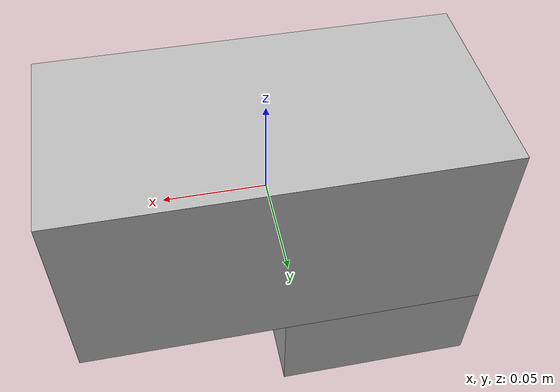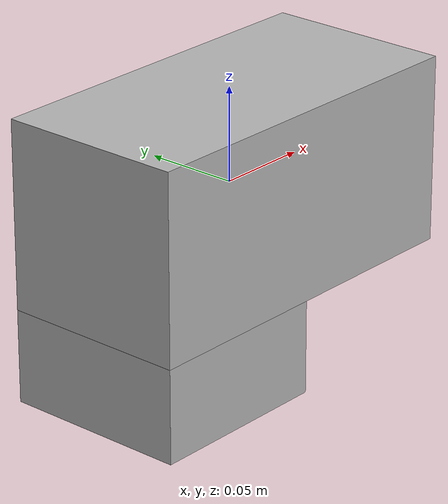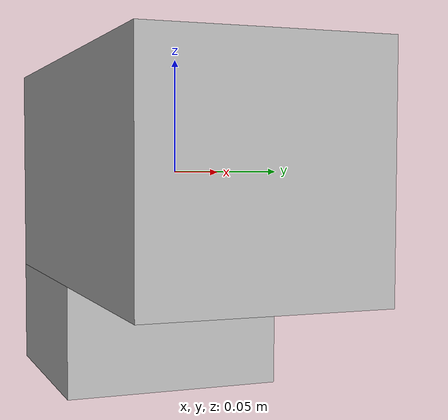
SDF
<?xml version="1.0" ?>
    <sdf version="1.5">
        <model name="camera">
            <pose>0 0 0 0 0 0</pose>

            <link name="Forward">
                <pose>0 0 0 0 0 0</pose>
                <inertial>
                    <mass>0.8</mass>
                    <inertia>
                        <ixx>0.9</ixx>
                        <iyy>0.9</iyy>
                        <izz>0.9</izz>
                    </inertia>
                </inertial>
                <collision name="collision">
                <geometry>
                    <box>
                    <size>0.1 0.1 0.1</size>
                    </box>
                </geometry>
                </collision>
                <visual name="visual">
                <geometry>
                    <box>
                    <size>0.2 0.1 0.1</size>
                    </box>
                </geometry>
                </visual>

                <sensor name="camera_forward" type="camera">
                <pose>0 0 0 0 0 0</pose>
                <topic>camera_forward</topic>
                <camera>
                    <box_type>full_2d</box_type>
                    <horizontal_fov>1.047</horizontal_fov>
                    <image>
                    <width>800</width>
                    <height>600</height>
                    </image>
                    <clip>
                    <near>0.1</near>
                    <far>10</far>
                    </clip>
                    <save enabled="true">
                    <path>../tmp_files/cam_forward</path>
                    </save>
                    <distortion>
                    <k1>1</k1>
                    <k2>10</k2>
                    <k3>5</k3>
                    <p1>10</p1>
                    <p2>10</p2>
                    <center>0.5 0.5</center>
                    </distortion>
                    <lens>
                    <type>stereographic</type>
                    <scale_to_hfov>true</scale_to_hfov>
                    <cutoff_angle>1.5707963267948966</cutoff_angle>
                    <env_texture_size>256</env_texture_size>
                    </lens>
                </camera>
                <always_on>1</always_on>
                <update_rate>24</update_rate>
                <visualize>true</visualize>

                <plugin
                    filename="gz-sim-camera-video-recorder-system"
                    name="gz::sim::systems::CameraVideoRecorder">
                    <service>camera_forward</service>
                    <use_sim_time>true</use_sim_time>
                    <fps>24</fps>
                </plugin>

                </sensor>

                <sensor name="camera_down" type="camera">
                <pose>0 0 0 0 1.5708 0</pose>
                <topic>camera_down</topic>
                <camera>
                    <box_type>full_2d</box_type>
                    <horizontal_fov>1.047</horizontal_fov>
                    <image>
                    <width>800</width>
                    <height>600</height>
                    </image>
                    <clip>
                    <near>0.1</near>
                    <far>10</far>
                    </clip>
                    <save enabled="true">
                    <path>../tmp_files/cam_down</path>
                    </save>
                    <distortion>
                    <k1>1</k1>
                    <k2>10</k2>
                    <k3>5</k3>
                    <p1>10</p1>
                    <p2>10</p2>
                    <center>0.5 0.5</center>
                    </distortion>
                    <lens>
                    <type>stereographic</type>
                    <scale_to_hfov>true</scale_to_hfov>
                    <cutoff_angle>1.5707963267948966</cutoff_angle>
                    <env_texture_size>256</env_texture_size>
                    </lens>
                </camera>
                <always_on>1</always_on>
                <update_rate>24</update_rate>
                <visualize>true</visualize>

                <plugin
                    filename="gz-sim-camera-video-recorder-system"
                    name="gz::sim::systems::CameraVideoRecorder">
                    <service>camera_down</service>
                    <use_sim_time>true</use_sim_time>
                    <fps>24</fps>
                </plugin>

                </sensor>

            </link>

            <link name="Down">
                <pose>-0.05 0 -0.075 0 0 0</pose>
                <inertial>
                    <mass>0.2</mass>
                    <pose>0.05 0 0.075 0 0 0</pose>
                    <inertia>
                        <ixx>0.1</ixx>
                        <iyy>0.1</iyy>
                        <izz>0.1</izz>
                    </inertia>
                </inertial>
                <collision name="collision">
                <geometry>
                    <box>
                    <size>0.1 0.1 0.05</size>
                    </box>
                </geometry>
                </collision>
                <visual name="visual">
                <geometry>
                    <box>
                    <size>0.1 0.1 0.05</size>
                    </box>
                </geometry>
                </visual>

            </link>

            <joint type="fixed" name="Front_to_Down">
                <pose>0 -0.075 0 0 0 0</pose>
                <parent>Forward</parent>
                <child>Down</child>
            </joint>

            <plugin
                filename="Position_Control"
                name="gz::sim::v7::systems::PositionController">
                <timestep_precision>10</timestep_precision>
                <xyz_offset> 0 0 0</xyz_offset>
                <rpy_offset> 0 0 0</rpy_offset>
            </plugin>

            <plugin
                filename="Pose_To_File"
                name="gz::sim::v7::systems::PoseToFile">
            </plugin>
        </model>
    </sdf>
